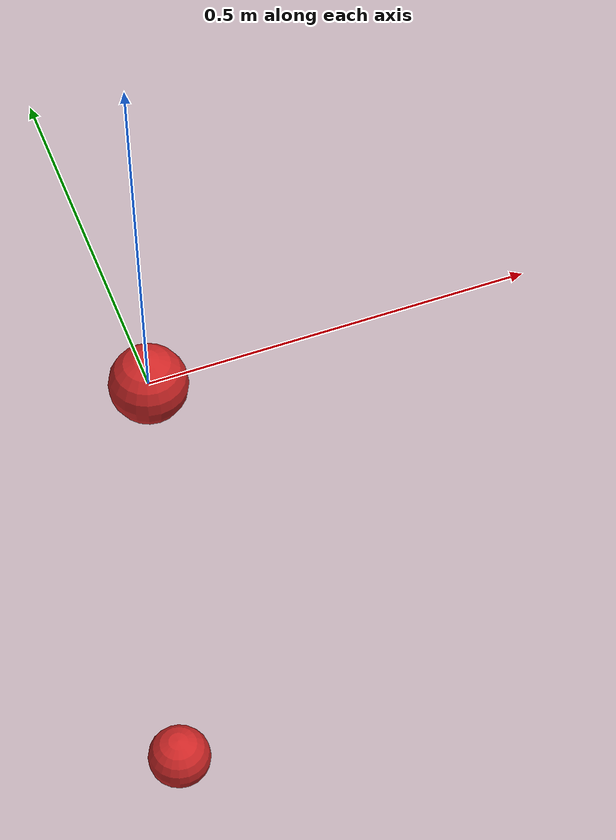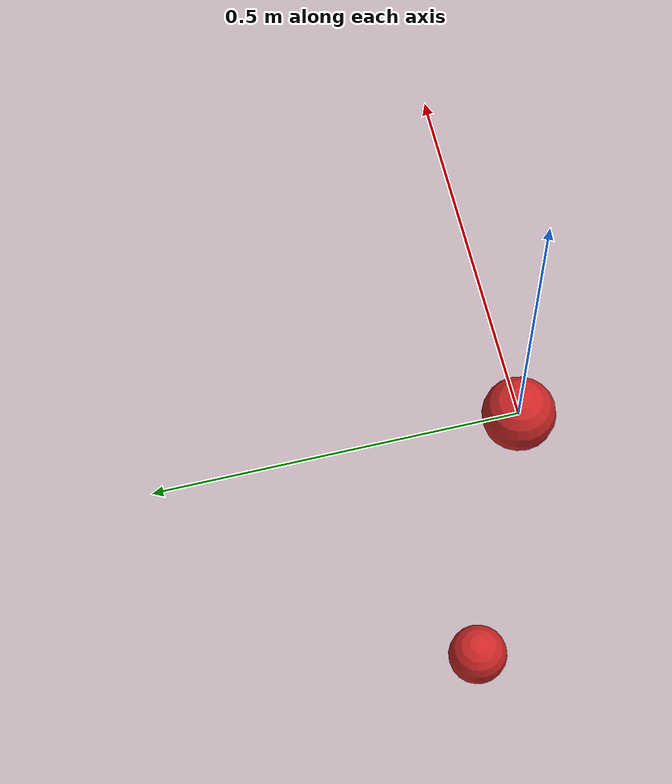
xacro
<?xml version="1.0"?>

<!-- Header File for inverted pendulum model -->
<!-- Andrew Peekema -->

<robot name="invertedPendulum"
	xmlns:sensor="http://playerstage.sourceforge.net/gazebo/xmlschema/#sensor"
	xmlns:controller="http://playerstage.sourceforge.net/gazebo/xmlschema/#controller"
	xmlns:joint="http://playerstage.sourceforge.net/gazebo/xmlschema/#slider"
	xmlns:xacro="http://www.ros.org/wiki/xacro"
	xmlns:interface="http://playerstage.sourceforge.net/gazebo/xmlschema/#interface"
	xmlns:model="http://playerstage.sourceforge.net/gazebo/xmlschema/#model"
	xmlns:geo="http://willowgarage.com/xmlschema/#geo"
	xmlns:geom="http://playerstage.sourceforge.net/gazebo/xmlschema/#geom"
	xmlns:body="http://playerstage.sourceforge.net/gazebo/xmlschema/#body" >

	<!-- get robot model macro -->
	<include filename="inverted_pendulum_mass.urdf.xacro" />
	<include filename="inverted_pendulum_toe.urdf.xacro" />

	<!-- builds the model -->
	<xacro:invertedPendulumMass massName="pointMass" />
	<xacro:invertedPendulumToe massName="pointMass" toeName="toe" />

	<!-- initialize the controller -->
    <gazebo>
        <controller:invertedPendulumWithToe name="Inverted_Pendulum_With_Toe" plugin="libinvertedPendulumWithToe.so">
            <alwaysOn> true </alwaysOn>
            <updateRate> 10000 </updateRate>
            <bodyName1> pointMass </bodyName1>
            <bodyName2> toe </bodyName2>
        </controller:invertedPendulumWithToe>
    </gazebo>

</robot>

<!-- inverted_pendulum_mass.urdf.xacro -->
<!-- Inverted Penulum Model -->

<robot name="pointMass"
	xmlns:sensor="http://playerstage.sourceforge.net/gazebo/xmlschema/#sensor"
	xmlns:controller="http://playerstage.sourceforge.net/gazebo/xmlschema/#controller"
	xmlns:joint="http://playerstage.sourceforge.net/gazebo/xmlschema/#slider"
	xmlns:xacro="http://www.ros.org/wiki/xacro"
	xmlns:interface="http://playerstage.sourceforge.net/gazebo/xmlschema/#interface"
	xmlns:model="http://playerstage.sourceforge.net/gazebo/xmlschema/#model"
	xmlns:geo="http://willowgarage.com/xmlschema/#geo"
	xmlns:geom="http://playerstage.sourceforge.net/gazebo/xmlschema/#geom"
	xmlns:body="http://playerstage.sourceforge.net/gazebo/xmlschema/#body" >

	<!-- Mathematical Constants -->
	<property name="M_PI" value="3.14159"/>
	<property name="SQRT_2" value="1.41421356"/>

    <xacro:macro name="invertedPendulumMass" params="massName">

    	<!--							Point Mass                                   -->

    	<link name="${massName}">
    		<inertial>
    			<origin xyz="0 0 0" rpy="0 0 0" />
    			<mass value="80" />
    			<inertia ixx="0.0001" ixy="0.0" ixz="0.0"
    					 iyy="0.0001" iyz="0.0"
    				     izz="0.0001" />
    		</inertial>
    		<visual>
    			<origin xyz="0 0 0" rpy="0 0 0" />
    			<geometry>
    			  <sphere radius="0.05" />
    			</geometry>
    		</visual>
    		<collision>
    			<origin xyz="0 0 0" rpy="0 0 0" />
    			<geometry>
    			  <sphere radius="0.05" />
    			</geometry>
    		</collision>
    	</link>

    	<gazebo reference="${massName}">
    		<material>Gazebo/Red</material>
    	</gazebo>

    </xacro:macro>

</robot>

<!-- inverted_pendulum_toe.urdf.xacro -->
<!-- Inverted Penulum Model -->

<robot name="toe"
	xmlns:sensor="http://playerstage.sourceforge.net/gazebo/xmlschema/#sensor"
	xmlns:controller="http://playerstage.sourceforge.net/gazebo/xmlschema/#controller"
	xmlns:joint="http://playerstage.sourceforge.net/gazebo/xmlschema/#slider"
	xmlns:xacro="http://www.ros.org/wiki/xacro"
	xmlns:interface="http://playerstage.sourceforge.net/gazebo/xmlschema/#interface"
	xmlns:model="http://playerstage.sourceforge.net/gazebo/xmlschema/#model"
	xmlns:geo="http://willowgarage.com/xmlschema/#geo"
	xmlns:geom="http://playerstage.sourceforge.net/gazebo/xmlschema/#geom"
	xmlns:body="http://playerstage.sourceforge.net/gazebo/xmlschema/#body" >

	<!-- Mathematical Constants -->
	<property name="M_PI" value="3.14159"/>
	<property name="SQRT_2" value="1.41421356"/>

    <xacro:macro name="invertedPendulumToe" params="toeName massName" >

    	<!--							Toe                                          -->

        <joint name="free_joint" type="floating">
           <origin xyz="0 0 -0.959" rpy="0 0 0" />
           <parent link="${massName}" />
           <child link="${toeName}" />
        </joint>

    	<link name="${toeName}">
    		<inertial>
    			<origin xyz="0 0 0" rpy="0 0 0" />
    			<mass value="0.0001" />
    			<inertia ixx="0.001" ixy="0.0" ixz="0.0"
    					 iyy="0.0001" iyz="0.0"
    				     izz="0.0001" />
    		</inertial>
    		<visual>
    			<origin xyz="0 0 0" rpy="0 0 0" />
    			<geometry>
    			  <sphere radius="0.05" />
    			</geometry>
    		</visual>
    		<collision>
    			<origin xyz="0 0 0" rpy="0 0 0" />
    			<geometry>
    			  <sphere radius="0.05" />
    			</geometry>
    		</collision>
    	</link>

    	<gazebo reference="${toeName}">
    		<material>Gazebo/Red</material>
    	</gazebo>

    </xacro:macro>

</robot>
